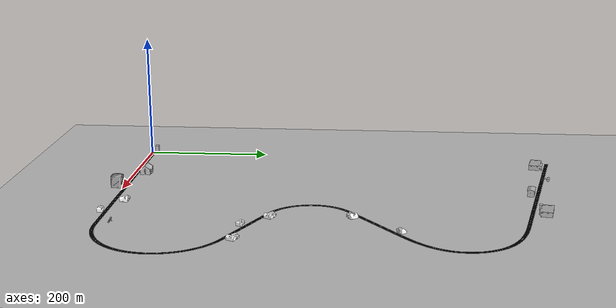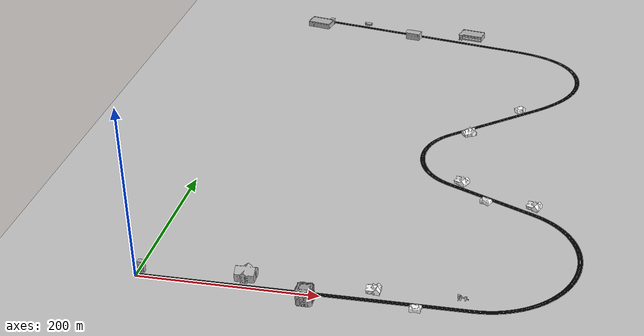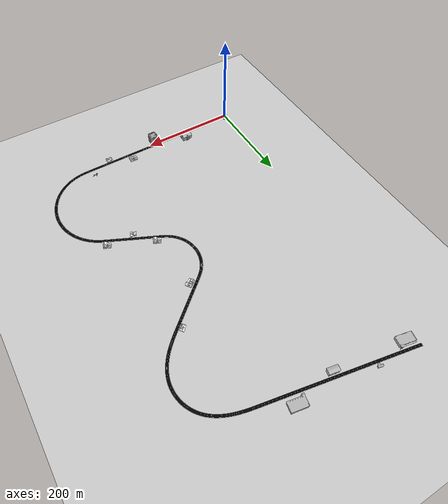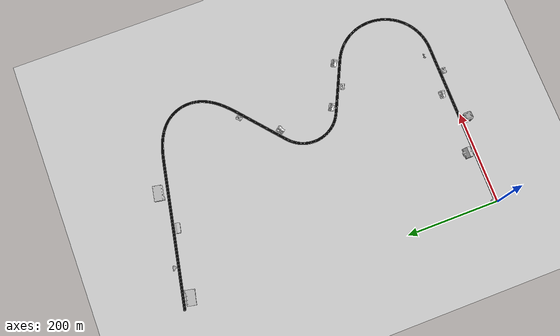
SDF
<sdf version="1.6">
 <world name="default">
  <model name="ground_plane">
   <pose>-500 0 0 0 -0 0</pose>
   <static>1</static>
   <link name="link">
    <collision name="collision">
     <geometry><plane><normal>0 0 1</normal><size>100 100</size></plane></geometry>
     <surface>
      <contact><collide_bitmask>65535</collide_bitmask></contact>
      <friction><ode><mu>100</mu><mu2>50</mu2></ode></friction>
     </surface>
    </collision>
    <visual name="visual">
     <cast_shadows>0</cast_shadows>
     <geometry><plane><normal>0 0 1</normal><size>100 100</size></plane></geometry>
     <material>
      <script><uri>file://media/materials/scripts/gazebo.material</uri><name>Gazebo/Grey</name></script>
     </material>
    </visual>
   </link>
  </model>
  <light name="sun" type="directional">
   <pose>0 0 10 0 -0 0</pose>
   <diffuse>0.8 0.8 0.8 1</diffuse>
   <specular>0.2 0.2 0.2 1</specular>
   <attenuation>
    <range>1000</range>
    <constant>0.9</constant>
    <linear>0.01</linear>
    <quadratic>0.001</quadratic>
   </attenuation>
   <direction>-0.5 0.1 -0.9</direction>
  </light>
  <model name="Table1">
   <link name="table">
    <inertial>
     <mass>10000</mass>
     <inertia>
      <ixx>1.33333e+06</ixx>
      <ixy>0</ixy>
      <ixz>0</ixz>
      <iyy>4.33333e+06</iyy>
      <iyz>0</iyz>
      <izz>3e+06</izz>
     </inertia>
    </inertial>
    <collision name="collision_table">
     <geometry><mesh><uri>file://Table/meshes/path2.dae</uri></mesh></geometry>
     <surface><friction><ode><mu>100</mu><mu2>50</mu2></ode></friction></surface>
    </collision>
    <visual name="visual_table">
     <geometry><mesh><uri>file://Table/meshes/path2.dae</uri></mesh></geometry>
    </visual>
   </link>
   <pose>0.101844 -0.000126 -0 0.000128 -5.2e-05 2e-06</pose>
  </model>
  <gravity>0 0 -9.8</gravity>
  <magnetic_field>6e-06 2.3e-05 -4.2e-05</magnetic_field>
  <atmosphere type="adiabatic"/>
  <physics name="default_physics" default="0" type="ode">
   <max_step_size>0.001</max_step_size>
   <real_time_factor>1</real_time_factor>
   <real_time_update_rate>1000</real_time_update_rate>
  </physics>
  <scene><ambient>0.4 0.4 0.4 1</ambient><background>0.7 0.7 0.7 1</background><shadows>1</shadows></scene>
  <audio><device>default</device></audio>
  <spherical_coordinates>
   <surface_model>EARTH_WGS84</surface_model>
   <latitude_deg>0</latitude_deg>
   <longitude_deg>0</longitude_deg>
   <elevation>0</elevation>
   <heading_deg>0</heading_deg>
  </spherical_coordinates>
  <model name="law_office">
   <static>1</static>
   <link name="link">
    <collision name="collision">
     <pose>0 0 6.96244 0 -0 0</pose>
     <geometry><box><size>6.84401 5.43165 13.9249</size></box></geometry>
    </collision>
    <visual name="visual">
     <geometry><mesh><uri>model://law_office/meshes/law_office.dae</uri></mesh></geometry>
    </visual>
   </link>
   <pose>3.85243 9.55294 0 0 -0 0</pose>
  </model>
  <model name="apartment">
   <static>1</static>
   <link name="link">
    <collision name="collision">
     <geometry><mesh><uri>model://apartment/meshes/apartment.dae</uri></mesh></geometry>
    </collision>
    <visual name="visual">
     <geometry><mesh><uri>model://apartment/meshes/apartment.dae</uri></mesh></geometry>
    </visual>
   </link>
   <pose>116.085 18.0589 0 0 -0 1.57705</pose>
  </model>
  <model name="Office Building">
   <static>1</static>
   <link name="link">
    <collision name="collision">
     <geometry><mesh><uri>model://office_building/meshes/office_building.dae</uri></mesh></geometry>
    </collision>
    <visual name="visual">
     <geometry><mesh><uri>model://office_building/meshes/office_building.dae</uri></mesh></geometry>
    </visual>
   </link>
   <pose>187.244 -11.1294 0 0 -0 0</pose>
  </model>
  <model name="House 1">
   <static>1</static>
   <link name="link">
    <collision name="collision">
     <geometry><mesh><uri>model://house_1/meshes/house_1.dae</uri><scale>1.5 1.5 1.5</scale></mesh></geometry>
    </collision>
    <visual name="visual">
     <geometry><mesh><uri>model://house_1/meshes/house_1.dae</uri><scale>1.5 1.5 1.5</scale></mesh></geometry>
     <material>
      <script>
       <uri>model://house_1/materials/scripts</uri>
       <uri>model://house_1/materials/textures</uri>
       <name>House_1/Diffuse</name>
      </script>
      <shader type="normal_map_tangent_space"><normal_map>House_1_Normal.png</normal_map></shader>
     </material>
    </visual>
   </link>
   <pose>253.005 18.8533 0 0 -0 0</pose>
  </model>
  <model name="House 2">
   <static>1</static>
   <link name="link">
    <collision name="collision">
     <geometry><mesh><uri>model://house_2/meshes/house_2.dae</uri><scale>1.5 1.5 1.5</scale></mesh></geometry>
    </collision>
    <visual name="visual">
     <geometry><mesh><uri>model://house_2/meshes/house_2.dae</uri><scale>1.5 1.5 1.5</scale></mesh></geometry>
     <material>
      <script>
       <uri>model://house_2/materials/scripts</uri>
       <uri>model://house_2/materials/textures</uri>
       <uri>model://house_1/materials/textures</uri>
       <name>House_2/Diffuse</name>
      </script>
      <shader type="normal_map_tangent_space">
       <normal_map>model://house_1/materials/textures/House_1_Normal.png</normal_map>
      </shader>
     </material>
    </visual>
   </link>
   <pose>300 -5.70142 0 0 -0 0</pose>
  </model>
  <model name="playground">
   <static>1</static>
   <link name="link">
    <collision name="collision">
     <geometry><mesh><uri>model://playground/meshes/playground.dae</uri></mesh></geometry>
    </collision>
    <visual name="visual">
     <geometry><mesh><uri>model://playground/meshes/playground.dae</uri></mesh></geometry>
    </visual>
   </link>
   <pose>346.035 21.3642 0 0 -0 0</pose>
  </model>
  <model name="House 2_0">
   <static>1</static>
   <link name="link">
    <collision name="collision">
     <geometry><mesh><uri>model://house_2/meshes/house_2.dae</uri><scale>1.5 1.5 1.5</scale></mesh></geometry>
    </collision>
    <visual name="visual">
     <geometry><mesh><uri>model://house_2/meshes/house_2.dae</uri><scale>1.5 1.5 1.5</scale></mesh></geometry>
     <material>
      <script>
       <uri>model://house_2/materials/scripts</uri>
       <uri>model://house_2/materials/textures</uri>
       <uri>model://house_1/materials/textures</uri>
       <name>House_2/Diffuse</name>
      </script>
      <shader type="normal_map_tangent_space">
       <normal_map>model://house_1/materials/textures/House_1_Normal.png</normal_map>
      </shader>
     </material>
    </visual>
   </link>
   <pose>343.289 210.773 0 0 0 -0.421062</pose>
  </model>
  <model name="House 1_1">
   <static>1</static>
   <link name="link">
    <collision name="collision">
     <geometry><mesh><uri>model://house_1/meshes/house_1.dae</uri><scale>1.5 1.5 1.5</scale></mesh></geometry>
    </collision>
    <visual name="visual">
     <geometry><mesh><uri>model://house_1/meshes/house_1.dae</uri><scale>1.5 1.5 1.5</scale></mesh></geometry>
     <material>
      <script>
       <uri>model://house_1/materials/scripts</uri>
       <uri>model://house_1/materials/textures</uri>
       <name>House_1/Diffuse</name>
      </script>
      <shader type="normal_map_tangent_space"><normal_map>House_1_Normal.png</normal_map></shader>
     </material>
    </visual>
   </link>
   <pose>310.796 249.049 0 0 0 -0.455514</pose>
  </model>
  <model name="House 1_0">
   <static>1</static>
   <link name="link">
    <collision name="collision">
     <geometry><mesh><uri>model://house_1/meshes/house_1.dae</uri><scale>1.5 1.5 1.5</scale></mesh></geometry>
    </collision>
    <visual name="visual">
     <geometry><mesh><uri>model://house_1/meshes/house_1.dae</uri><scale>1.5 1.5 1.5</scale></mesh></geometry>
     <material>
      <script>
       <uri>model://house_1/materials/scripts</uri>
       <uri>model://house_1/materials/textures</uri>
       <name>House_1/Diffuse</name>
      </script>
      <shader type="normal_map_tangent_space"><normal_map>House_1_Normal.png</normal_map></shader>
     </material>
    </visual>
   </link>
   <pose>400.212 209.194 0 0 0 -0.39972</pose>
  </model>
  <model name="House 1_2">
   <static>1</static>
   <link name="link">
    <collision name="collision">
     <geometry><mesh><uri>model://house_1/meshes/house_1.dae</uri><scale>1.5 1.5 1.5</scale></mesh></geometry>
    </collision>
    <visual name="visual">
     <geometry><mesh><uri>model://house_1/meshes/house_1.dae</uri><scale>1.5 1.5 1.5</scale></mesh></geometry>
     <material>
      <script>
       <uri>model://house_1/materials/scripts</uri>
       <uri>model://house_1/materials/textures</uri>
       <name>House_1/Diffuse</name>
      </script>
      <shader type="normal_map_tangent_space"><normal_map>House_1_Normal.png</normal_map></shader>
     </material>
    </visual>
   </link>
   <pose>302.478 367.877 0 0 -0 0.657076</pose>
  </model>
  <model name="House 2_1">
   <static>1</static>
   <link name="link">
    <collision name="collision">
     <geometry><mesh><uri>model://house_2/meshes/house_2.dae</uri><scale>1.5 1.5 1.5</scale></mesh></geometry>
    </collision>
    <visual name="visual">
     <geometry><mesh><uri>model://house_2/meshes/house_2.dae</uri><scale>1.5 1.5 1.5</scale></mesh></geometry>
     <material>
      <script>
       <uri>model://house_2/materials/scripts</uri>
       <uri>model://house_2/materials/textures</uri>
       <uri>model://house_1/materials/textures</uri>
       <name>House_2/Diffuse</name>
      </script>
      <shader type="normal_map_tangent_space">
       <normal_map>model://house_1/materials/textures/House_1_Normal.png</normal_map>
      </shader>
     </material>
    </visual>
   </link>
   <pose>357.745 439.606 0 0 -0 0.67882</pose>
  </model>
  <model name="post_office">
   <static>1</static>
   <link name="link">
    <collision name="collision">
     <geometry><mesh><uri>model://post_office/meshes/post_office.dae</uri></mesh></geometry>
    </collision>
    <visual name="visual">
     <geometry><mesh><uri>model://post_office/meshes/post_office.dae</uri></mesh></geometry>
    </visual>
   </link>
   <pose>108.182 672.579 0 0 -0 2.93563</pose>
  </model>
  <model name="grocery_store">
   <static>1</static>
   <link name="link">
    <collision name="collision">
     <pose>0 0 4.04605 0 -0 0</pose>
     <geometry><box><size>32.1985 17.5425 8.09209</size></box></geometry>
    </collision>
    <visual name="visual">
     <pose>0 -1.96155 0 0 -0 0</pose>
     <geometry><mesh><uri>model://grocery_store/meshes/grocery_store.dae</uri></mesh></geometry>
    </visual>
   </link>
   <pose>39.7291 658.625 0 0 0 -0.207273</pose>
  </model>
  <model name="grocery_store_0">
   <static>1</static>
   <link name="link">
    <collision name="collision">
     <pose>0 0 4.04605 0 -0 0</pose>
     <geometry><box><size>32.1985 17.5425 8.09209</size></box></geometry>
    </collision>
    <visual name="visual">
     <pose>0 -1.96155 0 0 -0 0</pose>
     <geometry><mesh><uri>model://grocery_store/meshes/grocery_store.dae</uri></mesh></geometry>
    </visual>
   </link>
   <pose>265.835 653.233 0 0 -0 2.96163</pose>
  </model>
  <model name="fire_station">
   <static>1</static>
   <link name="link">
    <collision name="main">
     <pose>0 -0.135 5 0 -0 0</pose>
     <geometry><box><size>19.98 9.68 10</size></box></geometry>
    </collision>
    <collision name="front_top">
     <pose>0 4.957 7 0 -0 0</pose>
     <geometry><box><size>20 0.515 6</size></box></geometry>
    </collision>
    <collision name="column_0">
     <pose>9.333 4.957 2 0 -0 0</pose>
     <geometry><box><size>1.315 0.515 4</size></box></geometry>
    </collision>
    <collision name="column_1">
     <pose>3.33 4.957 2 0 -0 0</pose>
     <geometry><box><size>2.63 0.515 4</size></box></geometry>
    </collision>
    <collision name="column_2">
     <pose>-3.33 4.957 2 0 -0 0</pose>
     <geometry><box><size>2.63 0.515 4</size></box></geometry>
    </collision>
    <collision name="column_3">
     <pose>-9.333 4.957 2 0 -0 0</pose>
     <geometry><box><size>1.315 0.515 4</size></box></geometry>
    </collision>
    <collision name="roof_back">
     <pose>0 -2.742 10.467 0.25 -0 0</pose>
     <geometry><box><size>21.47 6.12 0.28</size></box></geometry>
    </collision>
    <collision name="roof_front">
     <pose>0 3.12 10.467 -0.25 0 0</pose>
     <geometry><box><size>21.47 6.12 0.28</size></box></geometry>
    </collision>
    <collision name="roof_base">
     <pose>0 0.188 9.705 0 -0 0</pose>
     <geometry><box><size>21.47 11.86 0.28</size></box></geometry>
    </collision>
    <collision name="roof_filling_0">
     <pose>0 0.188 9.985 0 -0 0</pose>
     <geometry><box><size>21.47 9.53 0.28</size></box></geometry>
    </collision>
    <collision name="roof_filling_1">
     <pose>0 0.188 10.14 0 -0 0</pose>
     <geometry><box><size>21.47 8.41 0.28</size></box></geometry>
    </collision>
    <collision name="roof_filling_2">
     <pose>0 0.188 10.42 0 -0 0</pose>
     <geometry><box><size>21.47 6.25 0.28</size></box></geometry>
    </collision>
    <collision name="roof_filling_3">
     <pose>0 0.188 10.7 0 -0 0</pose>
     <geometry><box><size>21.47 4.05 0.28</size></box></geometry>
    </collision>
    <collision name="roof_filling_4">
     <pose>0 0.188 10.98 0 -0 0</pose>
     <geometry><box><size>21.47 1.83 0.28</size></box></geometry>
    </collision>
    <visual name="visual">
     <geometry><mesh><uri>model://fire_station/meshes/fire_station.dae</uri></mesh></geometry>
    </visual>
   </link>
   <pose>182.397 638.086 0 0 0 -0.187371</pose>
  </model>
 </world>
</sdf>
